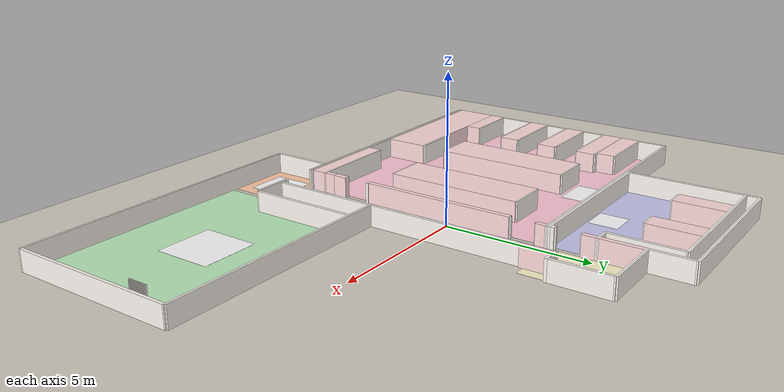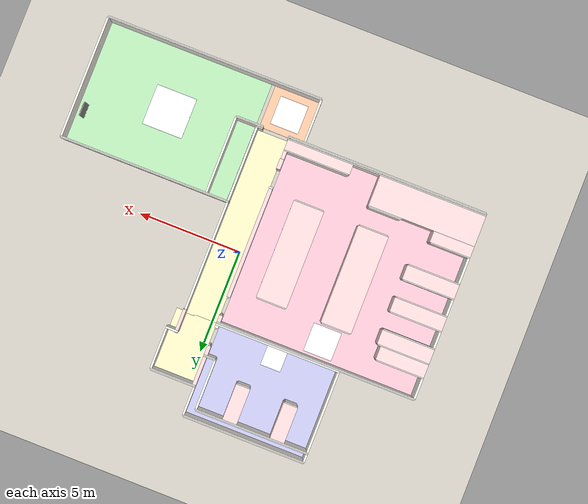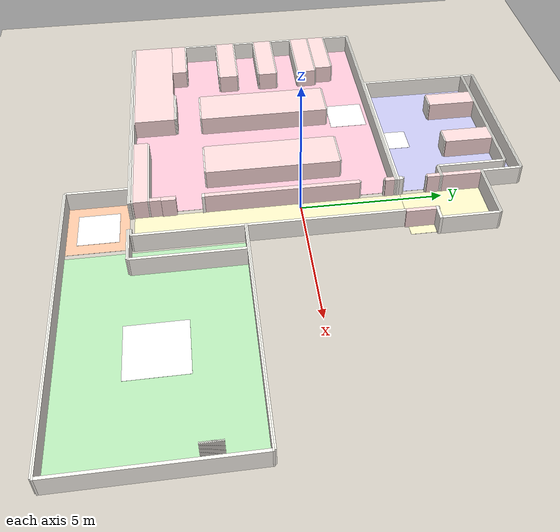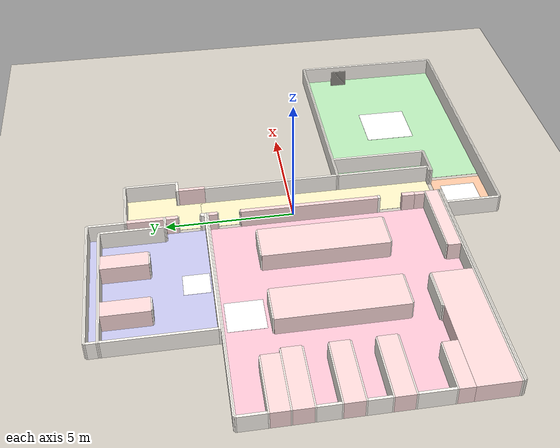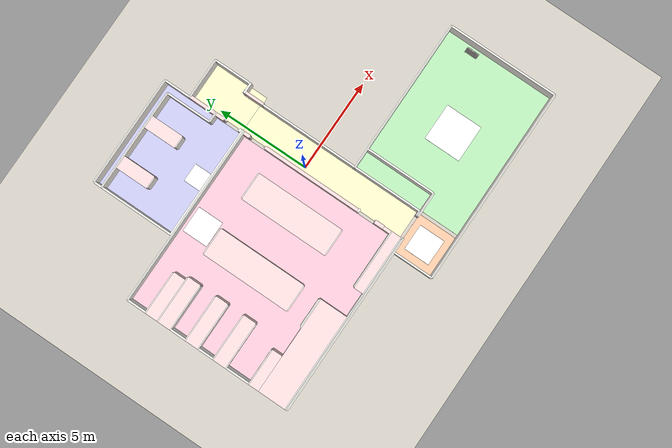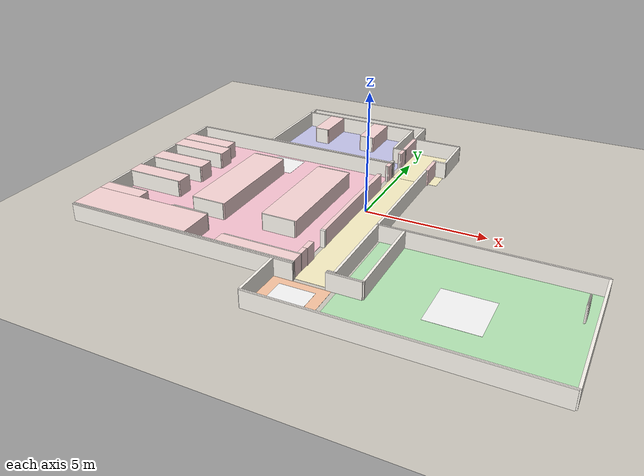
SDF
<?xml version="1.0" ?>
<sdf version="1.8">
  <world name="pingdergarten">
    <physics name="1ms" type="ignored">
      <max_step_size>0.001</max_step_size>
      <real_time_factor>1.0</real_time_factor>
    </physics>

    <plugin filename="gz-sim-physics-system" name="gz::sim::systems::Physics"/>
    <plugin filename="gz-sim-sensors-system" name="gz::sim::systems::Sensors">
      <render_engine>ogre2</render_engine>
    </plugin>
    <plugin filename="gz-sim-user-commands-system" name="gz::sim::systems::UserCommands"/>
    <plugin filename="gz-sim-scene-broadcaster-system" name="gz::sim::systems::SceneBroadcaster"/>
    <plugin filename="gz-sim-imu-system" name="gz::sim::systems::Imu"/>

    <light type="directional" name="sun">
      <cast_shadows>true</cast_shadows>
      <pose>10 10 12 0 0 0</pose>
      <diffuse>0.9 0.9 0.9 1</diffuse>
      <specular>0.6 0.6 0.6 1</specular>
      <attenuation>
        <range>1000</range>
        <constant>0.9</constant>
        <linear>0.01</linear>
        <quadratic>0.001</quadratic>
      </attenuation>
      <direction>-0.5 -0.3 -0.9</direction>
    </light>

    <model name="ground_plane">
      <static>true</static>
      <link name="link">
        <collision name="collision">
          <geometry>
            <plane><normal>0 0 1</normal><size>100 100</size></plane>
          </geometry>
        </collision>
        <visual name="visual">
          <geometry>
            <plane><normal>0 0 1</normal><size>100 100</size></plane>
          </geometry>
          <material>
            <ambient>0.78 0.76 0.72 1</ambient>
            <diffuse>0.82 0.80 0.76 1</diffuse>
            <specular>0.1 0.1 0.1 1</specular>
          </material>
        </visual>
      </link>
    </model>

    <!-- 환경: map.pgm raster → collision boxes -->
    <include>
      <uri>model://pingdergarten</uri>
      <name>pingdergarten_env</name>
      <pose>0 0 0 0 0 0</pose>
    </include>
  </world>
</sdf>

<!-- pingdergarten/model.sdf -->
<sdf version="1.8">
  <model name="pingdergarten">
    <static>true</static>
    <link name="link">
      <pose>0 0 0 0 0 0</pose>
      <visual name="floor_playroom_v">
        <pose>-5.1800 -1.1900 0.0025 0 0 0</pose>
        <geometry><box><size>9.5600 9.0400 0.0050</size></box></geometry>
        <material><ambient>0.920 0.722 0.776 1</ambient><diffuse>1.000 0.784 0.843 1</diffuse></material>
      </visual>
      <visual name="floor_sleeping_v">
        <pose>-3.3350 5.6900 0.0025 0 0 0</pose>
        <geometry><box><size>5.8700 4.4000 0.0050</size></box></geometry>
        <material><ambient>0.722 0.722 0.866 1</ambient><diffuse>0.784 0.784 0.941 1</diffuse></material>
      </visual>
      <visual name="floor_corridor_v">
        <pose>0.5200 -1.0750 0.0025 0 0 0</pose>
        <geometry><box><size>1.5200 9.2700 0.0050</size></box></geometry>
        <material><ambient>0.920 0.884 0.722 1</ambient><diffuse>1.000 0.961 0.784 1</diffuse></material>
      </visual>
      <visual name="floor_corridor_l_v">
        <pose>0.7750 4.9600 0.0025 0 0 0</pose>
        <geometry><box><size>2.0300 2.9400 0.0050</size></box></geometry>
        <material><ambient>0.920 0.884 0.722 1</ambient><diffuse>1.000 0.961 0.784 1</diffuse></material>
      </visual>
      <visual name="floor_entrance_v">
        <pose>0.1600 -6.9150 0.0025 0 0 0</pose>
        <geometry><box><size>2.2400 2.0900 0.0050</size></box></geometry>
        <material><ambient>0.920 0.722 0.595 1</ambient><diffuse>1.000 0.784 0.647 1</diffuse></material>
      </visual>
      <visual name="floor_outdoor_v">
        <pose>5.5150 -5.0050 0.0025 0 0 0</pose>
        <geometry><box><size>8.1300 5.9100 0.0050</size></box></geometry>
        <material><ambient>0.667 0.848 0.667 1</ambient><diffuse>0.725 0.922 0.725 1</diffuse></material>
      </visual>
      <visual name="label_playroom_v">
        <pose>-5.1800 2.5000 0.0070 0 0 0</pose>
        <geometry><box><size>1.4000 1.4000 0.0040</size></box></geometry>
        <material>
          <diffuse>1 1 1 1</diffuse>
          <ambient>0.9 0.9 0.9 1</ambient>
          <pbr><metal>
            <albedo_map>materials/textures/label_playroom.png</albedo_map>
            <metalness>0.0</metalness>
            <roughness>1.0</roughness>
          </metal></pbr>
        </material>
      </visual>
      <visual name="label_sleeping_v">
        <pose>-3.3400 4.0500 0.0070 0 0 0</pose>
        <geometry><box><size>1.0000 1.0000 0.0040</size></box></geometry>
        <material>
          <diffuse>1 1 1 1</diffuse>
          <ambient>0.9 0.9 0.9 1</ambient>
          <pbr><metal>
            <albedo_map>materials/textures/label_sleeping.png</albedo_map>
            <metalness>0.0</metalness>
            <roughness>1.0</roughness>
          </metal></pbr>
        </material>
      </visual>
      <visual name="label_entrance_v">
        <pose>0.1600 -6.9000 0.0070 0 0 0</pose>
        <geometry><box><size>1.4000 1.4000 0.0040</size></box></geometry>
        <material>
          <diffuse>1 1 1 1</diffuse>
          <ambient>0.9 0.9 0.9 1</ambient>
          <pbr><metal>
            <albedo_map>materials/textures/label_entrance.png</albedo_map>
            <metalness>0.0</metalness>
            <roughness>1.0</roughness>
          </metal></pbr>
        </material>
      </visual>
      <visual name="label_outdoor_v">
        <pose>5.5000 -5.0000 0.0070 0 0 0</pose>
        <geometry><box><size>2.0000 2.0000 0.0040</size></box></geometry>
        <material>
          <diffuse>1 1 1 1</diffuse>
          <ambient>0.9 0.9 0.9 1</ambient>
          <pbr><metal>
            <albedo_map>materials/textures/label_outdoor.png</albedo_map>
            <metalness>0.0</metalness>
            <roughness>1.0</roughness>
          </metal></pbr>
        </material>
      </visual>
      <collision name="wall_000">
        <pose>-3.3250 7.9500 0.3600 0 0 0</pose>
        <geometry><box><size>5.9500 0.0500 0.7200</size></box></geometry>
      </collision>
      <visual name="wall_000_v">
        <pose>-3.3250 7.9500 0.3600 0 0 0</pose>
        <geometry><box><size>5.9500 0.0500 0.7200</size></box></geometry>
        <material><ambient>1.00 0.96 0.92 1</ambient><diffuse>1.00 0.98 0.95 1</diffuse></material>
      </visual>
      <collision name="wall_001">
        <pose>-3.3250 7.9000 0.3600 0 0 0</pose>
        <geometry><box><size>6.0500 0.0500 0.7200</size></box></geometry>
      </collision>
      <visual name="wall_001_v">
        <pose>-3.3250 7.9000 0.3600 0 0 0</pose>
        <geometry><box><size>6.0500 0.0500 0.7200</size></box></geometry>
        <material><ambient>1.00 0.96 0.92 1</ambient><diffuse>1.00 0.98 0.95 1</diffuse></material>
      </visual>
      <collision name="wall_002">
        <pose>-6.3000 7.7000 0.3600 0 0 0</pose>
        <geometry><box><size>0.1000 0.3500 0.7200</size></box></geometry>
      </collision>
      <visual name="wall_002_v">
        <pose>-6.3000 7.7000 0.3600 0 0 0</pose>
        <geometry><box><size>0.1000 0.3500 0.7200</size></box></geometry>
        <material><ambient>1.00 0.96 0.92 1</ambient><diffuse>1.00 0.98 0.95 1</diffuse></material>
      </visual>
      <collision name="wall_003">
        <pose>-3.5750 7.5000 0.3600 0 0 0</pose>
        <geometry><box><size>5.5500 0.0500 0.7200</size></box></geometry>
      </collision>
      <visual name="wall_003_v">
        <pose>-3.5750 7.5000 0.3600 0 0 0</pose>
        <geometry><box><size>5.5500 0.0500 0.7200</size></box></geometry>
        <material><ambient>1.00 0.96 0.92 1</ambient><diffuse>1.00 0.98 0.95 1</diffuse></material>
      </visual>
      <collision name="wall_004">
        <pose>-3.5500 7.4500 0.3600 0 0 0</pose>
        <geometry><box><size>5.6000 0.0500 0.7200</size></box></geometry>
      </collision>
      <visual name="wall_004_v">
        <pose>-3.5500 7.4500 0.3600 0 0 0</pose>
        <geometry><box><size>5.6000 0.0500 0.7200</size></box></geometry>
        <material><ambient>1.00 0.96 0.92 1</ambient><diffuse>1.00 0.98 0.95 1</diffuse></material>
      </visual>
      <collision name="wall_005">
        <pose>-0.3500 7.2000 0.3600 0 0 0</pose>
        <geometry><box><size>0.1000 1.3500 0.7200</size></box></geometry>
      </collision>
      <visual name="wall_005_v">
        <pose>-0.3500 7.2000 0.3600 0 0 0</pose>
        <geometry><box><size>0.1000 1.3500 0.7200</size></box></geometry>
        <material><ambient>1.00 0.96 0.92 1</ambient><diffuse>1.00 0.98 0.95 1</diffuse></material>
      </visual>
      <collision name="wall_006">
        <pose>0.7125 6.5000 0.3600 0 0 0</pose>
        <geometry><box><size>2.2250 0.0500 0.7200</size></box></geometry>
      </collision>
      <visual name="wall_006_v">
        <pose>0.7125 6.5000 0.3600 0 0 0</pose>
        <geometry><box><size>2.2250 0.0500 0.7200</size></box></geometry>
        <material><ambient>1.00 0.96 0.92 1</ambient><diffuse>1.00 0.98 0.95 1</diffuse></material>
      </visual>
      <collision name="wall_007">
        <pose>0.7375 6.4500 0.3600 0 0 0</pose>
        <geometry><box><size>2.2750 0.0500 0.7200</size></box></geometry>
      </collision>
      <visual name="wall_007_v">
        <pose>0.7375 6.4500 0.3600 0 0 0</pose>
        <geometry><box><size>2.2750 0.0500 0.7200</size></box></geometry>
        <material><ambient>1.00 0.96 0.92 1</ambient><diffuse>1.00 0.98 0.95 1</diffuse></material>
      </visual>
      <collision name="furn_00">
        <pose>-4.8000 6.5500 0.3600 0 0 0</pose>
        <geometry><box><size>0.7000 1.7500 0.7200</size></box></geometry>
      </collision>
      <visual name="furn_00_v">
        <pose>-4.8000 6.5500 0.3600 0 0 0</pose>
        <geometry><box><size>0.7000 1.7500 0.7200</size></box></geometry>
        <material><ambient>0.96 0.78 0.78 1</ambient><diffuse>1.00 0.86 0.86 1</diffuse></material>
      </visual>
      <collision name="furn_01">
        <pose>-2.4500 6.5500 0.3600 0 0 0</pose>
        <geometry><box><size>0.7000 1.7500 0.7200</size></box></geometry>
      </collision>
      <visual name="furn_01_v">
        <pose>-2.4500 6.5500 0.3600 0 0 0</pose>
        <geometry><box><size>0.7000 1.7500 0.7200</size></box></geometry>
        <material><ambient>0.96 0.78 0.78 1</ambient><diffuse>1.00 0.86 0.86 1</diffuse></material>
      </visual>
      <collision name="wall_008">
        <pose>-2.4500 5.6500 0.3600 0 0 0</pose>
        <geometry><box><size>0.6000 0.0500 0.7200</size></box></geometry>
      </collision>
      <visual name="wall_008_v">
        <pose>-2.4500 5.6500 0.3600 0 0 0</pose>
        <geometry><box><size>0.6000 0.0500 0.7200</size></box></geometry>
        <material><ambient>1.00 0.96 0.92 1</ambient><diffuse>1.00 0.98 0.95 1</diffuse></material>
      </visual>
      <collision name="wall_009">
        <pose>-4.8000 5.6500 0.3600 0 0 0</pose>
        <geometry><box><size>0.6000 0.0500 0.7200</size></box></geometry>
      </collision>
      <visual name="wall_009_v">
        <pose>-4.8000 5.6500 0.3600 0 0 0</pose>
        <geometry><box><size>0.6000 0.0500 0.7200</size></box></geometry>
        <material><ambient>1.00 0.96 0.92 1</ambient><diffuse>1.00 0.98 0.95 1</diffuse></material>
      </visual>
      <collision name="wall_010">
        <pose>-0.8000 6.2375 0.3600 0 0 0</pose>
        <geometry><box><size>0.1000 2.3750 0.7200</size></box></geometry>
      </collision>
      <visual name="wall_010_v">
        <pose>-0.8000 6.2375 0.3600 0 0 0</pose>
        <geometry><box><size>0.1000 2.3750 0.7200</size></box></geometry>
        <material><ambient>1.00 0.96 0.92 1</ambient><diffuse>1.00 0.98 0.95 1</diffuse></material>
      </visual>
      <collision name="furn_02">
        <pose>-0.3125 5.7375 0.3600 0 0 0</pose>
        <geometry><box><size>0.1750 1.3750 0.7200</size></box></geometry>
      </collision>
      <visual name="furn_02_v">
        <pose>-0.3125 5.7375 0.3600 0 0 0</pose>
        <geometry><box><size>0.1750 1.3750 0.7200</size></box></geometry>
        <material><ambient>0.96 0.78 0.78 1</ambient><diffuse>1.00 0.86 0.86 1</diffuse></material>
      </visual>
      <collision name="wall_011">
        <pose>-0.5375 5.0250 0.3600 0 0 0</pose>
        <geometry><box><size>0.6250 0.0500 0.7200</size></box></geometry>
      </collision>
      <visual name="wall_011_v">
        <pose>-0.5375 5.0250 0.3600 0 0 0</pose>
        <geometry><box><size>0.6250 0.0500 0.7200</size></box></geometry>
        <material><ambient>1.00 0.96 0.92 1</ambient><diffuse>1.00 0.98 0.95 1</diffuse></material>
      </visual>
      <collision name="wall_012">
        <pose>-0.5125 4.9750 0.3600 0 0 0</pose>
        <geometry><box><size>0.5750 0.0500 0.7200</size></box></geometry>
      </collision>
      <visual name="wall_012_v">
        <pose>-0.5125 4.9750 0.3600 0 0 0</pose>
        <geometry><box><size>0.5750 0.0500 0.7200</size></box></geometry>
        <material><ambient>1.00 0.96 0.92 1</ambient><diffuse>1.00 0.98 0.95 1</diffuse></material>
      </visual>
      <collision name="furn_03">
        <pose>-0.3125 4.7250 0.3600 0 0 0</pose>
        <geometry><box><size>0.1750 0.4500 0.7200</size></box></geometry>
      </collision>
      <visual name="furn_03_v">
        <pose>-0.3125 4.7250 0.3600 0 0 0</pose>
        <geometry><box><size>0.1750 0.4500 0.7200</size></box></geometry>
        <material><ambient>0.96 0.78 0.78 1</ambient><diffuse>1.00 0.86 0.86 1</diffuse></material>
      </visual>
      <collision name="wall_013">
        <pose>1.8250 5.4500 0.3600 0 0 0</pose>
        <geometry><box><size>0.1000 1.9500 0.7200</size></box></geometry>
      </collision>
      <visual name="wall_013_v">
        <pose>1.8250 5.4500 0.3600 0 0 0</pose>
        <geometry><box><size>0.1000 1.9500 0.7200</size></box></geometry>
        <material><ambient>1.00 0.96 0.92 1</ambient><diffuse>1.00 0.98 0.95 1</diffuse></material>
      </visual>
      <collision name="wall_014">
        <pose>1.3500 4.4875 0.3600 0 0 0</pose>
        <geometry><box><size>0.1500 0.0250 0.7200</size></box></geometry>
      </collision>
      <visual name="wall_014_v">
        <pose>1.3500 4.4875 0.3600 0 0 0</pose>
        <geometry><box><size>0.1500 0.0250 0.7200</size></box></geometry>
        <material><ambient>1.00 0.96 0.92 1</ambient><diffuse>1.00 0.98 0.95 1</diffuse></material>
      </visual>
      <collision name="wall_015">
        <pose>-0.3125 4.4750 0.3600 0 0 0</pose>
        <geometry><box><size>0.0750 0.0500 0.7200</size></box></geometry>
      </collision>
      <visual name="wall_015_v">
        <pose>-0.3125 4.4750 0.3600 0 0 0</pose>
        <geometry><box><size>0.0750 0.0500 0.7200</size></box></geometry>
        <material><ambient>1.00 0.96 0.92 1</ambient><diffuse>1.00 0.98 0.95 1</diffuse></material>
      </visual>
      <collision name="wall_016">
        <pose>1.5750 4.4250 0.3600 0 0 0</pose>
        <geometry><box><size>0.6000 0.1000 0.7200</size></box></geometry>
      </collision>
      <visual name="wall_016_v">
        <pose>1.5750 4.4250 0.3600 0 0 0</pose>
        <geometry><box><size>0.6000 0.1000 0.7200</size></box></geometry>
        <material><ambient>1.00 0.96 0.92 1</ambient><diffuse>1.00 0.98 0.95 1</diffuse></material>
      </visual>
      <collision name="wall_017">
        <pose>-0.3125 3.6500 0.3600 0 0 0</pose>
        <geometry><box><size>0.0750 0.0500 0.7200</size></box></geometry>
      </collision>
      <visual name="wall_017_v">
        <pose>-0.3125 3.6500 0.3600 0 0 0</pose>
        <geometry><box><size>0.0750 0.0500 0.7200</size></box></geometry>
        <material><ambient>1.00 0.96 0.92 1</ambient><diffuse>1.00 0.98 0.95 1</diffuse></material>
      </visual>
      <collision name="wall_018">
        <pose>-6.3000 5.4625 0.3600 0 0 0</pose>
        <geometry><box><size>0.1000 3.9250 0.7200</size></box></geometry>
      </collision>
      <visual name="wall_018_v">
        <pose>-6.3000 5.4625 0.3600 0 0 0</pose>
        <geometry><box><size>0.1000 3.9250 0.7200</size></box></geometry>
        <material><ambient>1.00 0.96 0.92 1</ambient><diffuse>1.00 0.98 0.95 1</diffuse></material>
      </visual>
      <collision name="wall_019">
        <pose>-0.3125 3.5625 0.3600 0 0 0</pose>
        <geometry><box><size>0.1750 0.1250 0.7200</size></box></geometry>
      </collision>
      <visual name="wall_019_v">
        <pose>-0.3125 3.5625 0.3600 0 0 0</pose>
        <geometry><box><size>0.1750 0.1250 0.7200</size></box></geometry>
        <material><ambient>1.00 0.96 0.92 1</ambient><diffuse>1.00 0.98 0.95 1</diffuse></material>
      </visual>
      <collision name="wall_020">
        <pose>-3.2875 3.4625 0.3600 0 0 0</pose>
        <geometry><box><size>6.1250 0.0750 0.7200</size></box></geometry>
      </collision>
      <visual name="wall_020_v">
        <pose>-3.2875 3.4625 0.3600 0 0 0</pose>
        <geometry><box><size>6.1250 0.0750 0.7200</size></box></geometry>
        <material><ambient>1.00 0.96 0.92 1</ambient><diffuse>1.00 0.98 0.95 1</diffuse></material>
      </visual>
      <collision name="wall_021">
        <pose>-5.1125 3.4000 0.3600 0 0 0</pose>
        <geometry><box><size>9.7750 0.0500 0.7200</size></box></geometry>
      </collision>
      <visual name="wall_021_v">
        <pose>-5.1125 3.4000 0.3600 0 0 0</pose>
        <geometry><box><size>9.7750 0.0500 0.7200</size></box></geometry>
        <material><ambient>1.00 0.96 0.92 1</ambient><diffuse>1.00 0.98 0.95 1</diffuse></material>
      </visual>
      <collision name="furn_04">
        <pose>1.3500 3.8625 0.3600 0 0 0</pose>
        <geometry><box><size>0.1500 1.0250 0.7200</size></box></geometry>
      </collision>
      <visual name="furn_04_v">
        <pose>1.3500 3.8625 0.3600 0 0 0</pose>
        <geometry><box><size>0.1500 1.0250 0.7200</size></box></geometry>
        <material><ambient>0.96 0.78 0.78 1</ambient><diffuse>1.00 0.86 0.86 1</diffuse></material>
      </visual>
      <collision name="wall_022">
        <pose>-5.1375 3.3500 0.3600 0 0 0</pose>
        <geometry><box><size>9.8250 0.0500 0.7200</size></box></geometry>
      </collision>
      <visual name="wall_022_v">
        <pose>-5.1375 3.3500 0.3600 0 0 0</pose>
        <geometry><box><size>9.8250 0.0500 0.7200</size></box></geometry>
        <material><ambient>1.00 0.96 0.92 1</ambient><diffuse>1.00 0.98 0.95 1</diffuse></material>
      </visual>
      <collision name="furn_05">
        <pose>-0.3125 3.1625 0.3600 0 0 0</pose>
        <geometry><box><size>0.1750 0.3250 0.7200</size></box></geometry>
      </collision>
      <visual name="furn_05_v">
        <pose>-0.3125 3.1625 0.3600 0 0 0</pose>
        <geometry><box><size>0.1750 0.3250 0.7200</size></box></geometry>
        <material><ambient>0.96 0.78 0.78 1</ambient><diffuse>1.00 0.86 0.86 1</diffuse></material>
      </visual>
      <collision name="wall_023">
        <pose>-0.3125 2.9750 0.3600 0 0 0</pose>
        <geometry><box><size>0.0750 0.0500 0.7200</size></box></geometry>
      </collision>
      <visual name="wall_023_v">
        <pose>-0.3125 2.9750 0.3600 0 0 0</pose>
        <geometry><box><size>0.0750 0.0500 0.7200</size></box></geometry>
        <material><ambient>1.00 0.96 0.92 1</ambient><diffuse>1.00 0.98 0.95 1</diffuse></material>
      </visual>
      <collision name="wall_024">
        <pose>-10.0000 2.8375 0.3600 0 0 0</pose>
        <geometry><box><size>0.1000 0.9750 0.7200</size></box></geometry>
      </collision>
      <visual name="wall_024_v">
        <pose>-10.0000 2.8375 0.3600 0 0 0</pose>
        <geometry><box><size>0.1000 0.9750 0.7200</size></box></geometry>
        <material><ambient>1.00 0.96 0.92 1</ambient><diffuse>1.00 0.98 0.95 1</diffuse></material>
      </visual>
      <collision name="wall_025">
        <pose>-8.8875 2.3250 0.3600 0 0 0</pose>
        <geometry><box><size>2.3250 0.0500 0.7200</size></box></geometry>
      </collision>
      <visual name="wall_025_v">
        <pose>-8.8875 2.3250 0.3600 0 0 0</pose>
        <geometry><box><size>2.3250 0.0500 0.7200</size></box></geometry>
        <material><ambient>1.00 0.96 0.92 1</ambient><diffuse>1.00 0.98 0.95 1</diffuse></material>
      </visual>
      <collision name="wall_026">
        <pose>-0.3125 2.1250 0.3600 0 0 0</pose>
        <geometry><box><size>0.0750 0.0500 0.7200</size></box></geometry>
      </collision>
      <visual name="wall_026_v">
        <pose>-0.3125 2.1250 0.3600 0 0 0</pose>
        <geometry><box><size>0.0750 0.0500 0.7200</size></box></geometry>
        <material><ambient>1.00 0.96 0.92 1</ambient><diffuse>1.00 0.98 0.95 1</diffuse></material>
      </visual>
      <collision name="furn_06">
        <pose>-8.8625 1.9750 0.3600 0 0 0</pose>
        <geometry><box><size>2.3750 0.6500 0.7200</size></box></geometry>
      </collision>
      <visual name="furn_06_v">
        <pose>-8.8625 1.9750 0.3600 0 0 0</pose>
        <geometry><box><size>2.3750 0.6500 0.7200</size></box></geometry>
        <material><ambient>0.96 0.78 0.78 1</ambient><diffuse>1.00 0.86 0.86 1</diffuse></material>
      </visual>
      <collision name="wall_027">
        <pose>-2.2500 1.6500 0.3600 0 0 0</pose>
        <geometry><box><size>1.4000 0.0500 0.7200</size></box></geometry>
      </collision>
      <visual name="wall_027_v">
        <pose>-2.2500 1.6500 0.3600 0 0 0</pose>
        <geometry><box><size>1.4000 0.0500 0.7200</size></box></geometry>
        <material><ambient>1.00 0.96 0.92 1</ambient><diffuse>1.00 0.98 0.95 1</diffuse></material>
      </visual>
      <collision name="wall_028">
        <pose>-5.4500 1.6500 0.3600 0 0 0</pose>
        <geometry><box><size>1.4000 0.0500 0.7200</size></box></geometry>
      </collision>
      <visual name="wall_028_v">
        <pose>-5.4500 1.6500 0.3600 0 0 0</pose>
        <geometry><box><size>1.4000 0.0500 0.7200</size></box></geometry>
        <material><ambient>1.00 0.96 0.92 1</ambient><diffuse>1.00 0.98 0.95 1</diffuse></material>
      </visual>
      <collision name="wall_029">
        <pose>-8.7875 1.6250 0.3600 0 0 0</pose>
        <geometry><box><size>2.5250 0.0500 0.7200</size></box></geometry>
      </collision>
      <visual name="wall_029_v">
        <pose>-8.7875 1.6250 0.3600 0 0 0</pose>
        <geometry><box><size>2.5250 0.0500 0.7200</size></box></geometry>
        <material><ambient>1.00 0.96 0.92 1</ambient><diffuse>1.00 0.98 0.95 1</diffuse></material>
      </visual>
      <collision name="furn_07">
        <pose>-8.7625 1.2500 0.3600 0 0 0</pose>
        <geometry><box><size>2.5750 0.7000 0.7200</size></box></geometry>
      </collision>
      <visual name="furn_07_v">
        <pose>-8.7625 1.2500 0.3600 0 0 0</pose>
        <geometry><box><size>2.5750 0.7000 0.7200</size></box></geometry>
        <material><ambient>0.96 0.78 0.78 1</ambient><diffuse>1.00 0.86 0.86 1</diffuse></material>
      </visual>
      <collision name="wall_030">
        <pose>-8.7875 0.8750 0.3600 0 0 0</pose>
        <geometry><box><size>2.5250 0.0500 0.7200</size></box></geometry>
      </collision>
      <visual name="wall_030_v">
        <pose>-8.7875 0.8750 0.3600 0 0 0</pose>
        <geometry><box><size>2.5250 0.0500 0.7200</size></box></geometry>
        <material><ambient>1.00 0.96 0.92 1</ambient><diffuse>1.00 0.98 0.95 1</diffuse></material>
      </visual>
      <collision name="wall_031">
        <pose>-10.0000 0.4500 0.3600 0 0 0</pose>
        <geometry><box><size>0.1000 0.8000 0.7200</size></box></geometry>
      </collision>
      <visual name="wall_031_v">
        <pose>-10.0000 0.4500 0.3600 0 0 0</pose>
        <geometry><box><size>0.1000 0.8000 0.7200</size></box></geometry>
        <material><ambient>1.00 0.96 0.92 1</ambient><diffuse>1.00 0.98 0.95 1</diffuse></material>
      </visual>
      <collision name="wall_032">
        <pose>-8.7875 0.0250 0.3600 0 0 0</pose>
        <geometry><box><size>2.5250 0.0500 0.7200</size></box></geometry>
      </collision>
      <visual name="wall_032_v">
        <pose>-8.7875 0.0250 0.3600 0 0 0</pose>
        <geometry><box><size>2.5250 0.0500 0.7200</size></box></geometry>
        <material><ambient>1.00 0.96 0.92 1</ambient><diffuse>1.00 0.98 0.95 1</diffuse></material>
      </visual>
      <collision name="furn_08">
        <pose>-8.7625 -0.3500 0.3600 0 0 0</pose>
        <geometry><box><size>2.5750 0.7000 0.7200</size></box></geometry>
      </collision>
      <visual name="furn_08_v">
        <pose>-8.7625 -0.3500 0.3600 0 0 0</pose>
        <geometry><box><size>2.5750 0.7000 0.7200</size></box></geometry>
        <material><ambient>0.96 0.78 0.78 1</ambient><diffuse>1.00 0.86 0.86 1</diffuse></material>
      </visual>
      <collision name="wall_033">
        <pose>-8.7875 -0.7250 0.3600 0 0 0</pose>
        <geometry><box><size>2.5250 0.0500 0.7200</size></box></geometry>
      </collision>
      <visual name="wall_033_v">
        <pose>-8.7875 -0.7250 0.3600 0 0 0</pose>
        <geometry><box><size>2.5250 0.0500 0.7200</size></box></geometry>
        <material><ambient>1.00 0.96 0.92 1</ambient><diffuse>1.00 0.98 0.95 1</diffuse></material>
      </visual>
      <collision name="wall_034">
        <pose>-10.0000 -1.1500 0.3600 0 0 0</pose>
        <geometry><box><size>0.1000 0.8000 0.7200</size></box></geometry>
      </collision>
      <visual name="wall_034_v">
        <pose>-10.0000 -1.1500 0.3600 0 0 0</pose>
        <geometry><box><size>0.1000 0.8000 0.7200</size></box></geometry>
        <material><ambient>1.00 0.96 0.92 1</ambient><diffuse>1.00 0.98 0.95 1</diffuse></material>
      </visual>
      <collision name="wall_035">
        <pose>-8.7875 -1.5750 0.3600 0 0 0</pose>
        <geometry><box><size>2.5250 0.0500 0.7200</size></box></geometry>
      </collision>
      <visual name="wall_035_v">
        <pose>-8.7875 -1.5750 0.3600 0 0 0</pose>
        <geometry><box><size>2.5250 0.0500 0.7200</size></box></geometry>
        <material><ambient>1.00 0.96 0.92 1</ambient><diffuse>1.00 0.98 0.95 1</diffuse></material>
      </visual>
      <collision name="wall_036">
        <pose>1.3250 0.7000 0.3600 0 0 0</pose>
        <geometry><box><size>0.1000 5.3000 0.7200</size></box></geometry>
      </collision>
      <visual name="wall_036_v">
        <pose>1.3250 0.7000 0.3600 0 0 0</pose>
        <geometry><box><size>0.1000 5.3000 0.7200</size></box></geometry>
        <material><ambient>1.00 0.96 0.92 1</ambient><diffuse>1.00 0.98 0.95 1</diffuse></material>
      </visual>
      <collision name="wall_037">
        <pose>5.4500 -1.9750 0.3600 0 0 0</pose>
        <geometry><box><size>8.3500 0.0500 0.7200</size></box></geometry>
      </collision>
      <visual name="wall_037_v">
        <pose>5.4500 -1.9750 0.3600 0 0 0</pose>
        <geometry><box><size>8.3500 0.0500 0.7200</size></box></geometry>
        <material><ambient>1.00 0.96 0.92 1</ambient><diffuse>1.00 0.98 0.95 1</diffuse></material>
      </visual>
      <collision name="wall_038">
        <pose>5.4750 -2.0250 0.3600 0 0 0</pose>
        <geometry><box><size>8.4000 0.0500 0.7200</size></box></geometry>
      </collision>
      <visual name="wall_038_v">
        <pose>5.4750 -2.0250 0.3600 0 0 0</pose>
        <geometry><box><size>8.4000 0.0500 0.7200</size></box></geometry>
        <material><ambient>1.00 0.96 0.92 1</ambient><diffuse>1.00 0.98 0.95 1</diffuse></material>
      </visual>
      <collision name="furn_09">
        <pose>-8.7625 -1.9500 0.3600 0 0 0</pose>
        <geometry><box><size>2.5750 0.7000 0.7200</size></box></geometry>
      </collision>
      <visual name="furn_09_v">
        <pose>-8.7625 -1.9500 0.3600 0 0 0</pose>
        <geometry><box><size>2.5750 0.7000 0.7200</size></box></geometry>
        <material><ambient>0.96 0.78 0.78 1</ambient><diffuse>1.00 0.86 0.86 1</diffuse></material>
      </visual>
      <collision name="wall_039">
        <pose>-8.7875 -2.3250 0.3600 0 0 0</pose>
        <geometry><box><size>2.5250 0.0500 0.7200</size></box></geometry>
      </collision>
      <visual name="wall_039_v">
        <pose>-8.7875 -2.3250 0.3600 0 0 0</pose>
        <geometry><box><size>2.5250 0.0500 0.7200</size></box></geometry>
        <material><ambient>1.00 0.96 0.92 1</ambient><diffuse>1.00 0.98 0.95 1</diffuse></material>
      </visual>
      <collision name="furn_10">
        <pose>-2.2500 -0.7750 0.3600 0 0 0</pose>
        <geometry><box><size>1.5000 4.8000 0.7200</size></box></geometry>
      </collision>
      <visual name="furn_10_v">
        <pose>-2.2500 -0.7750 0.3600 0 0 0</pose>
        <geometry><box><size>1.5000 4.8000 0.7200</size></box></geometry>
        <material><ambient>0.96 0.78 0.78 1</ambient><diffuse>1.00 0.86 0.86 1</diffuse></material>
      </visual>
      <collision name="furn_11">
        <pose>-5.4500 -0.7750 0.3600 0 0 0</pose>
        <geometry><box><size>1.5000 4.8000 0.7200</size></box></geometry>
      </collision>
      <visual name="furn_11_v">
        <pose>-5.4500 -0.7750 0.3600 0 0 0</pose>
        <geometry><box><size>1.5000 4.8000 0.7200</size></box></geometry>
        <material><ambient>0.96 0.78 0.78 1</ambient><diffuse>1.00 0.86 0.86 1</diffuse></material>
      </visual>
      <collision name="wall_040">
        <pose>-2.2500 -3.2000 0.3600 0 0 0</pose>
        <geometry><box><size>1.4000 0.0500 0.7200</size></box></geometry>
      </collision>
      <visual name="wall_040_v">
        <pose>-2.2500 -3.2000 0.3600 0 0 0</pose>
        <geometry><box><size>1.4000 0.0500 0.7200</size></box></geometry>
        <material><ambient>1.00 0.96 0.92 1</ambient><diffuse>1.00 0.98 0.95 1</diffuse></material>
      </visual>
      <collision name="wall_041">
        <pose>-5.4500 -3.2000 0.3600 0 0 0</pose>
        <geometry><box><size>1.4000 0.0500 0.7200</size></box></geometry>
      </collision>
      <visual name="wall_041_v">
        <pose>-5.4500 -3.2000 0.3600 0 0 0</pose>
        <geometry><box><size>1.4000 0.0500 0.7200</size></box></geometry>
        <material><ambient>1.00 0.96 0.92 1</ambient><diffuse>1.00 0.98 0.95 1</diffuse></material>
      </visual>
      <collision name="wall_042">
        <pose>9.1750 -3.2375 0.3600 0 0 0</pose>
        <geometry><box><size>0.0500 0.0250 0.7200</size></box></geometry>
      </collision>
      <visual name="wall_042_v">
        <pose>9.1750 -3.2375 0.3600 0 0 0</pose>
        <geometry><box><size>0.0500 0.0250 0.7200</size></box></geometry>
        <material><ambient>1.00 0.96 0.92 1</ambient><diffuse>1.00 0.98 0.95 1</diffuse></material>
      </visual>
      <collision name="furn_12">
        <pose>-0.3125 -0.5875 0.3600 0 0 0</pose>
        <geometry><box><size>0.1750 5.3750 0.7200</size></box></geometry>
      </collision>
      <visual name="furn_12_v">
        <pose>-0.3125 -0.5875 0.3600 0 0 0</pose>
        <geometry><box><size>0.1750 5.3750 0.7200</size></box></geometry>
        <material><ambient>0.96 0.78 0.78 1</ambient><diffuse>1.00 0.86 0.86 1</diffuse></material>
      </visual>
      <collision name="wall_043">
        <pose>9.2000 -3.2625 0.3600 0 0 0</pose>
        <geometry><box><size>0.0500 0.0250 0.7200</size></box></geometry>
      </collision>
      <visual name="wall_043_v">
        <pose>9.2000 -3.2625 0.3600 0 0 0</pose>
        <geometry><box><size>0.0500 0.0250 0.7200</size></box></geometry>
        <material><ambient>1.00 0.96 0.92 1</ambient><diffuse>1.00 0.98 0.95 1</diffuse></material>
      </visual>
      <collision name="wall_044">
        <pose>9.1750 -3.2875 0.3600 0 0 0</pose>
        <geometry><box><size>0.0500 0.0250 0.7200</size></box></geometry>
      </collision>
      <visual name="wall_044_v">
        <pose>9.1750 -3.2875 0.3600 0 0 0</pose>
        <geometry><box><size>0.0500 0.0250 0.7200</size></box></geometry>
        <material><ambient>1.00 0.96 0.92 1</ambient><diffuse>1.00 0.98 0.95 1</diffuse></material>
      </visual>
      <collision name="wall_045">
        <pose>9.2000 -3.3125 0.3600 0 0 0</pose>
        <geometry><box><size>0.0500 0.0250 0.7200</size></box></geometry>
      </collision>
      <visual name="wall_045_v">
        <pose>9.2000 -3.3125 0.3600 0 0 0</pose>
        <geometry><box><size>0.0500 0.0250 0.7200</size></box></geometry>
        <material><ambient>1.00 0.96 0.92 1</ambient><diffuse>1.00 0.98 0.95 1</diffuse></material>
      </visual>
      <collision name="wall_046">
        <pose>9.1750 -3.3375 0.3600 0 0 0</pose>
        <geometry><box><size>0.0500 0.0250 0.7200</size></box></geometry>
      </collision>
      <visual name="wall_046_v">
        <pose>9.1750 -3.3375 0.3600 0 0 0</pose>
        <geometry><box><size>0.0500 0.0250 0.7200</size></box></geometry>
        <material><ambient>1.00 0.96 0.92 1</ambient><diffuse>1.00 0.98 0.95 1</diffuse></material>
      </visual>
      <collision name="wall_047">
        <pose>-0.3000 -3.3250 0.3600 0 0 0</pose>
        <geometry><box><size>0.2000 0.1000 0.7200</size></box></geometry>
      </collision>
      <visual name="wall_047_v">
        <pose>-0.3000 -3.3250 0.3600 0 0 0</pose>
        <geometry><box><size>0.2000 0.1000 0.7200</size></box></geometry>
        <material><ambient>1.00 0.96 0.92 1</ambient><diffuse>1.00 0.98 0.95 1</diffuse></material>
      </visual>
      <collision name="wall_048">
        <pose>9.2000 -3.3625 0.3600 0 0 0</pose>
        <geometry><box><size>0.0500 0.0250 0.7200</size></box></geometry>
      </collision>
      <visual name="wall_048_v">
        <pose>9.2000 -3.3625 0.3600 0 0 0</pose>
        <geometry><box><size>0.0500 0.0250 0.7200</size></box></geometry>
        <material><ambient>1.00 0.96 0.92 1</ambient><diffuse>1.00 0.98 0.95 1</diffuse></material>
      </visual>
      <collision name="wall_049">
        <pose>9.1750 -3.3875 0.3600 0 0 0</pose>
        <geometry><box><size>0.0500 0.0250 0.7200</size></box></geometry>
      </collision>
      <visual name="wall_049_v">
        <pose>9.1750 -3.3875 0.3600 0 0 0</pose>
        <geometry><box><size>0.0500 0.0250 0.7200</size></box></geometry>
        <material><ambient>1.00 0.96 0.92 1</ambient><diffuse>1.00 0.98 0.95 1</diffuse></material>
      </visual>
      <collision name="wall_050">
        <pose>9.2000 -3.4125 0.3600 0 0 0</pose>
        <geometry><box><size>0.0500 0.0250 0.7200</size></box></geometry>
      </collision>
      <visual name="wall_050_v">
        <pose>9.2000 -3.4125 0.3600 0 0 0</pose>
        <geometry><box><size>0.0500 0.0250 0.7200</size></box></geometry>
        <material><ambient>1.00 0.96 0.92 1</ambient><diffuse>1.00 0.98 0.95 1</diffuse></material>
      </visual>
      <collision name="wall_051">
        <pose>9.1750 -3.4375 0.3600 0 0 0</pose>
        <geometry><box><size>0.0500 0.0250 0.7200</size></box></geometry>
      </collision>
      <visual name="wall_051_v">
        <pose>9.1750 -3.4375 0.3600 0 0 0</pose>
        <geometry><box><size>0.0500 0.0250 0.7200</size></box></geometry>
        <material><ambient>1.00 0.96 0.92 1</ambient><diffuse>1.00 0.98 0.95 1</diffuse></material>
      </visual>
      <collision name="wall_052">
        <pose>9.2000 -3.4625 0.3600 0 0 0</pose>
        <geometry><box><size>0.0500 0.0250 0.7200</size></box></geometry>
      </collision>
      <visual name="wall_052_v">
        <pose>9.2000 -3.4625 0.3600 0 0 0</pose>
        <geometry><box><size>0.0500 0.0250 0.7200</size></box></geometry>
        <material><ambient>1.00 0.96 0.92 1</ambient><diffuse>1.00 0.98 0.95 1</diffuse></material>
      </visual>
      <collision name="wall_053">
        <pose>9.1750 -3.4875 0.3600 0 0 0</pose>
        <geometry><box><size>0.0500 0.0250 0.7200</size></box></geometry>
      </collision>
      <visual name="wall_053_v">
        <pose>9.1750 -3.4875 0.3600 0 0 0</pose>
        <geometry><box><size>0.0500 0.0250 0.7200</size></box></geometry>
        <material><ambient>1.00 0.96 0.92 1</ambient><diffuse>1.00 0.98 0.95 1</diffuse></material>
      </visual>
      <collision name="wall_054">
        <pose>9.2000 -3.5125 0.3600 0 0 0</pose>
        <geometry><box><size>0.0500 0.0250 0.7200</size></box></geometry>
      </collision>
      <visual name="wall_054_v">
        <pose>9.2000 -3.5125 0.3600 0 0 0</pose>
        <geometry><box><size>0.0500 0.0250 0.7200</size></box></geometry>
        <material><ambient>1.00 0.96 0.92 1</ambient><diffuse>1.00 0.98 0.95 1</diffuse></material>
      </visual>
      <collision name="wall_055">
        <pose>9.1750 -3.5375 0.3600 0 0 0</pose>
        <geometry><box><size>0.0500 0.0250 0.7200</size></box></geometry>
      </collision>
      <visual name="wall_055_v">
        <pose>9.1750 -3.5375 0.3600 0 0 0</pose>
        <geometry><box><size>0.0500 0.0250 0.7200</size></box></geometry>
        <material><ambient>1.00 0.96 0.92 1</ambient><diffuse>1.00 0.98 0.95 1</diffuse></material>
      </visual>
      <collision name="wall_056">
        <pose>9.2000 -3.5625 0.3600 0 0 0</pose>
        <geometry><box><size>0.0500 0.0250 0.7200</size></box></geometry>
      </collision>
      <visual name="wall_056_v">
        <pose>9.2000 -3.5625 0.3600 0 0 0</pose>
        <geometry><box><size>0.0500 0.0250 0.7200</size></box></geometry>
        <material><ambient>1.00 0.96 0.92 1</ambient><diffuse>1.00 0.98 0.95 1</diffuse></material>
      </visual>
      <collision name="wall_057">
        <pose>-10.0000 -2.9750 0.3600 0 0 0</pose>
        <geometry><box><size>0.1000 1.2500 0.7200</size></box></geometry>
      </collision>
      <visual name="wall_057_v">
        <pose>-10.0000 -2.9750 0.3600 0 0 0</pose>
        <geometry><box><size>0.1000 1.2500 0.7200</size></box></geometry>
        <material><ambient>1.00 0.96 0.92 1</ambient><diffuse>1.00 0.98 0.95 1</diffuse></material>
      </visual>
      <collision name="wall_058">
        <pose>9.1750 -3.5875 0.3600 0 0 0</pose>
        <geometry><box><size>0.0500 0.0250 0.7200</size></box></geometry>
      </collision>
      <visual name="wall_058_v">
        <pose>9.1750 -3.5875 0.3600 0 0 0</pose>
        <geometry><box><size>0.0500 0.0250 0.7200</size></box></geometry>
        <material><ambient>1.00 0.96 0.92 1</ambient><diffuse>1.00 0.98 0.95 1</diffuse></material>
      </visual>
      <collision name="wall_059">
        <pose>9.2000 -3.6125 0.3600 0 0 0</pose>
        <geometry><box><size>0.0500 0.0250 0.7200</size></box></geometry>
      </collision>
      <visual name="wall_059_v">
        <pose>9.2000 -3.6125 0.3600 0 0 0</pose>
        <geometry><box><size>0.0500 0.0250 0.7200</size></box></geometry>
        <material><ambient>1.00 0.96 0.92 1</ambient><diffuse>1.00 0.98 0.95 1</diffuse></material>
      </visual>
      <collision name="wall_060">
        <pose>-9.0750 -3.6250 0.3600 0 0 0</pose>
        <geometry><box><size>1.9500 0.0500 0.7200</size></box></geometry>
      </collision>
      <visual name="wall_060_v">
        <pose>-9.0750 -3.6250 0.3600 0 0 0</pose>
        <geometry><box><size>1.9500 0.0500 0.7200</size></box></geometry>
        <material><ambient>1.00 0.96 0.92 1</ambient><diffuse>1.00 0.98 0.95 1</diffuse></material>
      </visual>
      <collision name="wall_061">
        <pose>9.1750 -3.6375 0.3600 0 0 0</pose>
        <geometry><box><size>0.0500 0.0250 0.7200</size></box></geometry>
      </collision>
      <visual name="wall_061_v">
        <pose>9.1750 -3.6375 0.3600 0 0 0</pose>
        <geometry><box><size>0.0500 0.0250 0.7200</size></box></geometry>
        <material><ambient>1.00 0.96 0.92 1</ambient><diffuse>1.00 0.98 0.95 1</diffuse></material>
      </visual>
      <collision name="wall_062">
        <pose>9.2000 -3.6625 0.3600 0 0 0</pose>
        <geometry><box><size>0.0500 0.0250 0.7200</size></box></geometry>
      </collision>
      <visual name="wall_062_v">
        <pose>9.2000 -3.6625 0.3600 0 0 0</pose>
        <geometry><box><size>0.0500 0.0250 0.7200</size></box></geometry>
        <material><ambient>1.00 0.96 0.92 1</ambient><diffuse>1.00 0.98 0.95 1</diffuse></material>
      </visual>
      <collision name="wall_063">
        <pose>9.1750 -3.6875 0.3600 0 0 0</pose>
        <geometry><box><size>0.0500 0.0250 0.7200</size></box></geometry>
      </collision>
      <visual name="wall_063_v">
        <pose>9.1750 -3.6875 0.3600 0 0 0</pose>
        <geometry><box><size>0.0500 0.0250 0.7200</size></box></geometry>
        <material><ambient>1.00 0.96 0.92 1</ambient><diffuse>1.00 0.98 0.95 1</diffuse></material>
      </visual>
      <collision name="wall_064">
        <pose>9.2000 -3.7125 0.3600 0 0 0</pose>
        <geometry><box><size>0.0500 0.0250 0.7200</size></box></geometry>
      </collision>
      <visual name="wall_064_v">
        <pose>9.2000 -3.7125 0.3600 0 0 0</pose>
        <geometry><box><size>0.0500 0.0250 0.7200</size></box></geometry>
        <material><ambient>1.00 0.96 0.92 1</ambient><diffuse>1.00 0.98 0.95 1</diffuse></material>
      </visual>
      <collision name="wall_065">
        <pose>9.1750 -3.7375 0.3600 0 0 0</pose>
        <geometry><box><size>0.0500 0.0250 0.7200</size></box></geometry>
      </collision>
      <visual name="wall_065_v">
        <pose>9.1750 -3.7375 0.3600 0 0 0</pose>
        <geometry><box><size>0.0500 0.0250 0.7200</size></box></geometry>
        <material><ambient>1.00 0.96 0.92 1</ambient><diffuse>1.00 0.98 0.95 1</diffuse></material>
      </visual>
      <collision name="wall_066">
        <pose>9.2000 -3.7625 0.3600 0 0 0</pose>
        <geometry><box><size>0.0500 0.0250 0.7200</size></box></geometry>
      </collision>
      <visual name="wall_066_v">
        <pose>9.2000 -3.7625 0.3600 0 0 0</pose>
        <geometry><box><size>0.0500 0.0250 0.7200</size></box></geometry>
        <material><ambient>1.00 0.96 0.92 1</ambient><diffuse>1.00 0.98 0.95 1</diffuse></material>
      </visual>
      <collision name="wall_067">
        <pose>9.1750 -3.7875 0.3600 0 0 0</pose>
        <geometry><box><size>0.0500 0.0250 0.7200</size></box></geometry>
      </collision>
      <visual name="wall_067_v">
        <pose>9.1750 -3.7875 0.3600 0 0 0</pose>
        <geometry><box><size>0.0500 0.0250 0.7200</size></box></geometry>
        <material><ambient>1.00 0.96 0.92 1</ambient><diffuse>1.00 0.98 0.95 1</diffuse></material>
      </visual>
      <collision name="wall_068">
        <pose>9.2000 -3.8125 0.3600 0 0 0</pose>
        <geometry><box><size>0.0500 0.0250 0.7200</size></box></geometry>
      </collision>
      <visual name="wall_068_v">
        <pose>9.2000 -3.8125 0.3600 0 0 0</pose>
        <geometry><box><size>0.0500 0.0250 0.7200</size></box></geometry>
        <material><ambient>1.00 0.96 0.92 1</ambient><diffuse>1.00 0.98 0.95 1</diffuse></material>
      </visual>
      <collision name="wall_069">
        <pose>9.1750 -3.8375 0.3600 0 0 0</pose>
        <geometry><box><size>0.0500 0.0250 0.7200</size></box></geometry>
      </collision>
      <visual name="wall_069_v">
        <pose>9.1750 -3.8375 0.3600 0 0 0</pose>
        <geometry><box><size>0.0500 0.0250 0.7200</size></box></geometry>
        <material><ambient>1.00 0.96 0.92 1</ambient><diffuse>1.00 0.98 0.95 1</diffuse></material>
      </visual>
      <collision name="wall_070">
        <pose>9.2000 -3.8625 0.3600 0 0 0</pose>
        <geometry><box><size>0.0500 0.0250 0.7200</size></box></geometry>
      </collision>
      <visual name="wall_070_v">
        <pose>9.2000 -3.8625 0.3600 0 0 0</pose>
        <geometry><box><size>0.0500 0.0250 0.7200</size></box></geometry>
        <material><ambient>1.00 0.96 0.92 1</ambient><diffuse>1.00 0.98 0.95 1</diffuse></material>
      </visual>
      <collision name="wall_071">
        <pose>9.1750 -3.8875 0.3600 0 0 0</pose>
        <geometry><box><size>0.0500 0.0250 0.7200</size></box></geometry>
      </collision>
      <visual name="wall_071_v">
        <pose>9.1750 -3.8875 0.3600 0 0 0</pose>
        <geometry><box><size>0.0500 0.0250 0.7200</size></box></geometry>
        <material><ambient>1.00 0.96 0.92 1</ambient><diffuse>1.00 0.98 0.95 1</diffuse></material>
      </visual>
      <collision name="wall_072">
        <pose>-5.6375 -4.1250 0.3600 0 0 0</pose>
        <geometry><box><size>1.5750 0.0500 0.7200</size></box></geometry>
      </collision>
      <visual name="wall_072_v">
        <pose>-5.6375 -4.1250 0.3600 0 0 0</pose>
        <geometry><box><size>1.5750 0.0500 0.7200</size></box></geometry>
        <material><ambient>1.00 0.96 0.92 1</ambient><diffuse>1.00 0.98 0.95 1</diffuse></material>
      </visual>
      <collision name="furn_13">
        <pose>-9.0500 -3.9250 0.3600 0 0 0</pose>
        <geometry><box><size>2.0000 0.5500 0.7200</size></box></geometry>
      </collision>
      <visual name="furn_13_v">
        <pose>-9.0500 -3.9250 0.3600 0 0 0</pose>
        <geometry><box><size>2.0000 0.5500 0.7200</size></box></geometry>
        <material><ambient>0.96 0.78 0.78 1</ambient><diffuse>1.00 0.86 0.86 1</diffuse></material>
      </visual>
      <collision name="wall_073">
        <pose>-5.6375 -4.1750 0.3600 0 0 0</pose>
        <geometry><box><size>1.6750 0.0500 0.7200</size></box></geometry>
      </collision>
      <visual name="wall_073_v">
        <pose>-5.6375 -4.1750 0.3600 0 0 0</pose>
        <geometry><box><size>1.6750 0.0500 0.7200</size></box></geometry>
        <material><ambient>1.00 0.96 0.92 1</ambient><diffuse>1.00 0.98 0.95 1</diffuse></material>
      </visual>
      <collision name="furn_14">
        <pose>-0.3000 -4.5000 0.3600 0 0 0</pose>
        <geometry><box><size>0.2000 0.5000 0.7200</size></box></geometry>
      </collision>
      <visual name="furn_14_v">
        <pose>-0.3000 -4.5000 0.3600 0 0 0</pose>
        <geometry><box><size>0.2000 0.5000 0.7200</size></box></geometry>
        <material><ambient>0.96 0.78 0.78 1</ambient><diffuse>1.00 0.86 0.86 1</diffuse></material>
      </visual>
      <collision name="furn_15">
        <pose>-0.3125 -4.9500 0.3600 0 0 0</pose>
        <geometry><box><size>0.1750 0.4000 0.7200</size></box></geometry>
      </collision>
      <visual name="furn_15_v">
        <pose>-0.3125 -4.9500 0.3600 0 0 0</pose>
        <geometry><box><size>0.1750 0.4000 0.7200</size></box></geometry>
        <material><ambient>0.96 0.78 0.78 1</ambient><diffuse>1.00 0.86 0.86 1</diffuse></material>
      </visual>
      <collision name="wall_074">
        <pose>-1.8250 -5.1750 0.3600 0 0 0</pose>
        <geometry><box><size>3.2000 0.0500 0.7200</size></box></geometry>
      </collision>
      <visual name="wall_074_v">
        <pose>-1.8250 -5.1750 0.3600 0 0 0</pose>
        <geometry><box><size>3.2000 0.0500 0.7200</size></box></geometry>
        <material><ambient>1.00 0.96 0.92 1</ambient><diffuse>1.00 0.98 0.95 1</diffuse></material>
      </visual>
      <collision name="wall_075">
        <pose>1.3250 -3.8750 0.3600 0 0 0</pose>
        <geometry><box><size>0.1000 3.6500 0.7200</size></box></geometry>
      </collision>
      <visual name="wall_075_v">
        <pose>1.3250 -3.8750 0.3600 0 0 0</pose>
        <geometry><box><size>0.1000 3.6500 0.7200</size></box></geometry>
        <material><ambient>1.00 0.96 0.92 1</ambient><diffuse>1.00 0.98 0.95 1</diffuse></material>
      </visual>
      <collision name="furn_16">
        <pose>-7.4250 -4.9500 0.3600 0 0 0</pose>
        <geometry><box><size>5.2500 1.5000 0.7200</size></box></geometry>
      </collision>
      <visual name="furn_16_v">
        <pose>-7.4250 -4.9500 0.3600 0 0 0</pose>
        <geometry><box><size>5.2500 1.5000 0.7200</size></box></geometry>
        <material><ambient>0.96 0.78 0.78 1</ambient><diffuse>1.00 0.86 0.86 1</diffuse></material>
      </visual>
      <collision name="furn_17">
        <pose>-1.8500 -5.4500 0.3600 0 0 0</pose>
        <geometry><box><size>3.2500 0.5000 0.7200</size></box></geometry>
      </collision>
      <visual name="furn_17_v">
        <pose>-1.8500 -5.4500 0.3600 0 0 0</pose>
        <geometry><box><size>3.2500 0.5000 0.7200</size></box></geometry>
        <material><ambient>0.96 0.78 0.78 1</ambient><diffuse>1.00 0.86 0.86 1</diffuse></material>
      </visual>
      <collision name="wall_076">
        <pose>1.2125 -5.7250 0.3600 0 0 0</pose>
        <geometry><box><size>0.3250 0.0500 0.7200</size></box></geometry>
      </collision>
      <visual name="wall_076_v">
        <pose>1.2125 -5.7250 0.3600 0 0 0</pose>
        <geometry><box><size>0.3250 0.0500 0.7200</size></box></geometry>
        <material><ambient>1.00 0.96 0.92 1</ambient><diffuse>1.00 0.98 0.95 1</diffuse></material>
      </visual>
      <collision name="wall_077">
        <pose>-5.1250 -5.7250 0.3600 0 0 0</pose>
        <geometry><box><size>9.8500 0.0500 0.7200</size></box></geometry>
      </collision>
      <visual name="wall_077_v">
        <pose>-5.1250 -5.7250 0.3600 0 0 0</pose>
        <geometry><box><size>9.8500 0.0500 0.7200</size></box></geometry>
        <material><ambient>1.00 0.96 0.92 1</ambient><diffuse>1.00 0.98 0.95 1</diffuse></material>
      </visual>
      <collision name="wall_078">
        <pose>2.4000 -3.9125 0.3600 0 0 0</pose>
        <geometry><box><size>0.1000 3.7250 0.7200</size></box></geometry>
      </collision>
      <visual name="wall_078_v">
        <pose>2.4000 -3.9125 0.3600 0 0 0</pose>
        <geometry><box><size>0.1000 3.7250 0.7200</size></box></geometry>
        <material><ambient>1.00 0.96 0.92 1</ambient><diffuse>1.00 0.98 0.95 1</diffuse></material>
      </visual>
      <collision name="wall_079">
        <pose>1.1875 -5.7625 0.3600 0 0 0</pose>
        <geometry><box><size>0.2750 0.0250 0.7200</size></box></geometry>
      </collision>
      <visual name="wall_079_v">
        <pose>1.1875 -5.7625 0.3600 0 0 0</pose>
        <geometry><box><size>0.2750 0.0250 0.7200</size></box></geometry>
        <material><ambient>1.00 0.96 0.92 1</ambient><diffuse>1.00 0.98 0.95 1</diffuse></material>
      </visual>
      <collision name="wall_080">
        <pose>-5.2000 -5.7625 0.3600 0 0 0</pose>
        <geometry><box><size>9.7000 0.0250 0.7200</size></box></geometry>
      </collision>
      <visual name="wall_080_v">
        <pose>-5.2000 -5.7625 0.3600 0 0 0</pose>
        <geometry><box><size>9.7000 0.0250 0.7200</size></box></geometry>
        <material><ambient>1.00 0.96 0.92 1</ambient><diffuse>1.00 0.98 0.95 1</diffuse></material>
      </visual>
      <collision name="wall_081">
        <pose>-0.2375 -5.7625 0.3600 0 0 0</pose>
        <geometry><box><size>0.0750 0.0250 0.7200</size></box></geometry>
      </collision>
      <visual name="wall_081_v">
        <pose>-0.2375 -5.7625 0.3600 0 0 0</pose>
        <geometry><box><size>0.0750 0.0250 0.7200</size></box></geometry>
        <material><ambient>1.00 0.96 0.92 1</ambient><diffuse>1.00 0.98 0.95 1</diffuse></material>
      </visual>
      <collision name="wall_082">
        <pose>-5.1250 -5.8000 0.3600 0 0 0</pose>
        <geometry><box><size>9.8500 0.0500 0.7200</size></box></geometry>
      </collision>
      <visual name="wall_082_v">
        <pose>-5.1250 -5.8000 0.3600 0 0 0</pose>
        <geometry><box><size>9.8500 0.0500 0.7200</size></box></geometry>
        <material><ambient>1.00 0.96 0.92 1</ambient><diffuse>1.00 0.98 0.95 1</diffuse></material>
      </visual>
      <collision name="wall_083">
        <pose>1.7500 -5.8000 0.3600 0 0 0</pose>
        <geometry><box><size>1.4000 0.0500 0.7200</size></box></geometry>
      </collision>
      <visual name="wall_083_v">
        <pose>1.7500 -5.8000 0.3600 0 0 0</pose>
        <geometry><box><size>1.4000 0.0500 0.7200</size></box></geometry>
        <material><ambient>1.00 0.96 0.92 1</ambient><diffuse>1.00 0.98 0.95 1</diffuse></material>
      </visual>
      <collision name="wall_084">
        <pose>-5.1000 -5.8500 0.3600 0 0 0</pose>
        <geometry><box><size>9.8000 0.0500 0.7200</size></box></geometry>
      </collision>
      <visual name="wall_084_v">
        <pose>-5.1000 -5.8500 0.3600 0 0 0</pose>
        <geometry><box><size>9.8000 0.0500 0.7200</size></box></geometry>
        <material><ambient>1.00 0.96 0.92 1</ambient><diffuse>1.00 0.98 0.95 1</diffuse></material>
      </visual>
      <collision name="wall_085">
        <pose>1.7250 -5.8500 0.3600 0 0 0</pose>
        <geometry><box><size>1.3500 0.0500 0.7200</size></box></geometry>
      </collision>
      <visual name="wall_085_v">
        <pose>1.7250 -5.8500 0.3600 0 0 0</pose>
        <geometry><box><size>1.3500 0.0500 0.7200</size></box></geometry>
        <material><ambient>1.00 0.96 0.92 1</ambient><diffuse>1.00 0.98 0.95 1</diffuse></material>
      </visual>
      <collision name="wall_086">
        <pose>9.6250 -5.0000 0.3600 0 0 0</pose>
        <geometry><box><size>0.1000 5.9000 0.7200</size></box></geometry>
      </collision>
      <visual name="wall_086_v">
        <pose>9.6250 -5.0000 0.3600 0 0 0</pose>
        <geometry><box><size>0.1000 5.9000 0.7200</size></box></geometry>
        <material><ambient>1.00 0.96 0.92 1</ambient><diffuse>1.00 0.98 0.95 1</diffuse></material>
      </visual>
      <collision name="wall_087">
        <pose>-1.0000 -6.9125 0.3600 0 0 0</pose>
        <geometry><box><size>0.1000 2.0750 0.7200</size></box></geometry>
      </collision>
      <visual name="wall_087_v">
        <pose>-1.0000 -6.9125 0.3600 0 0 0</pose>
        <geometry><box><size>0.1000 2.0750 0.7200</size></box></geometry>
        <material><ambient>1.00 0.96 0.92 1</ambient><diffuse>1.00 0.98 0.95 1</diffuse></material>
      </visual>
      <collision name="wall_088">
        <pose>4.3125 -7.9750 0.3600 0 0 0</pose>
        <geometry><box><size>10.7250 0.0500 0.7200</size></box></geometry>
      </collision>
      <visual name="wall_088_v">
        <pose>4.3125 -7.9750 0.3600 0 0 0</pose>
        <geometry><box><size>10.7250 0.0500 0.7200</size></box></geometry>
        <material><ambient>1.00 0.96 0.92 1</ambient><diffuse>1.00 0.98 0.95 1</diffuse></material>
      </visual>
      <collision name="wall_089">
        <pose>4.3125 -8.0250 0.3600 0 0 0</pose>
        <geometry><box><size>10.6250 0.0500 0.7200</size></box></geometry>
      </collision>
      <visual name="wall_089_v">
        <pose>4.3125 -8.0250 0.3600 0 0 0</pose>
        <geometry><box><size>10.6250 0.0500 0.7200</size></box></geometry>
        <material><ambient>1.00 0.96 0.92 1</ambient><diffuse>1.00 0.98 0.95 1</diffuse></material>
      </visual>
    </link>
  </model>
</sdf>
